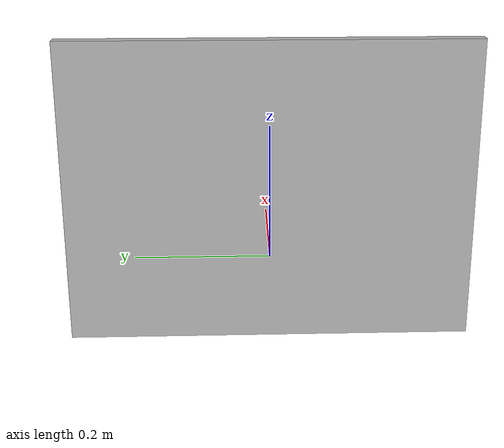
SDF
<?xml version="1.0" ?>
<sdf version="1.5">
  <model name="ArUco calibration table">
    <pose>0 0 0.1 0 0 0</pose>
    <static>true</static>
    <link name="link">
      <inertial>
        <mass>0.1</mass>
        <inertia>
          <ixx>1</ixx>
          <ixy>0</ixy>
          <ixz>0</ixz>
          <iyy>1</iyy>
          <iyz>0</iyz>
          <izz>1</izz>
        </inertia>
      </inertial>
      <collision name="collision">
        <geometry>
          <box>
            <size>0.02 0.6 0.45</size>
          </box>
        </geometry>
        <surface>
          <contact>
            <ode>
              <max_vel>0.1</max_vel>
              <min_depth>0.001</min_depth>
            </ode>
          </contact>
        </surface>
      </collision>
      <visual name="visual">
        <geometry>
          <mesh>
            <uri>model://ArUco_calibration_table/meshes/calibration_table.dae</uri>
          </mesh>
        </geometry>
      </visual>
    </link>
  </model>
</sdf>
